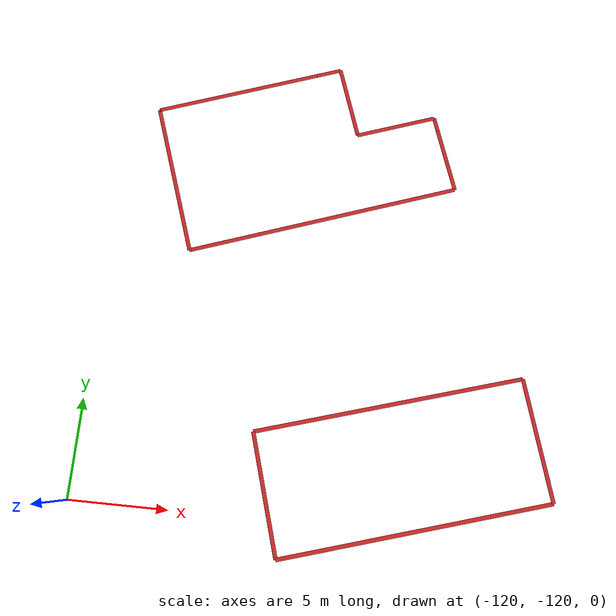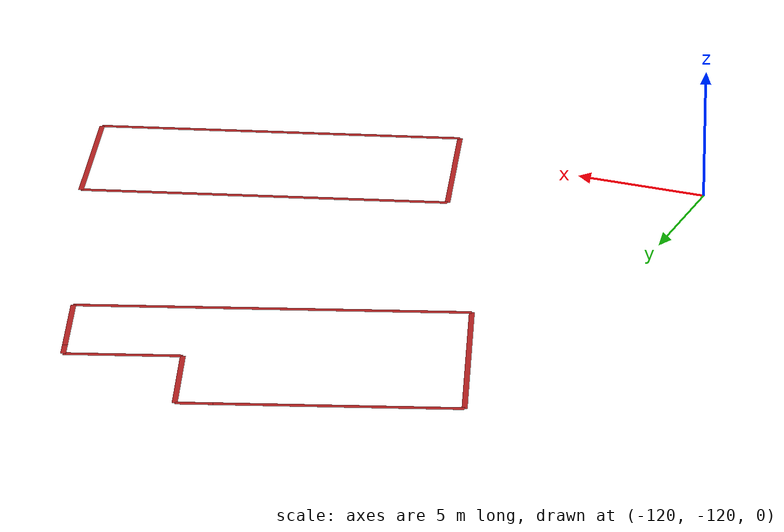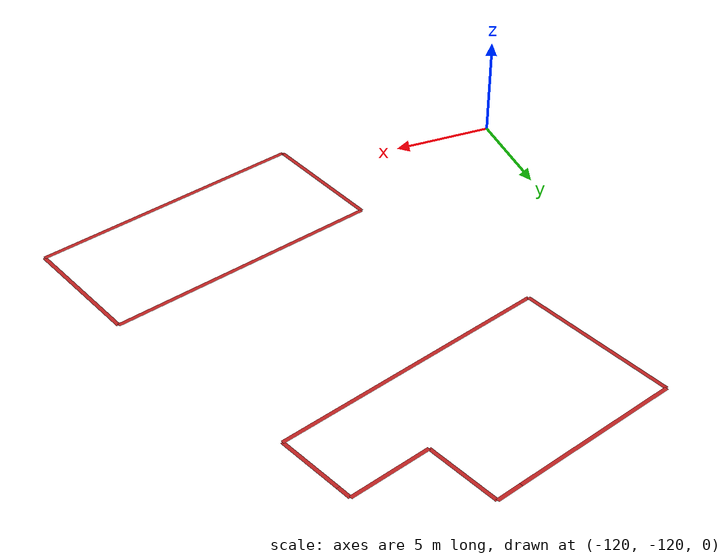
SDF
<sdf version="1.4">
 <world name="default">
  <include><uri>model://sun</uri></include>
  <model name="office_building_179136935">
   <static>true</static>
   <pose>-102.624997378 -115.787035572 0.0 0 0 0</pose>
   <link name="office_building_179136935_0">
    <collision name="office_building_179136935_0">
     <geometry><box><size>6.24606287223 0.2 0</size></box></geometry>
    </collision>
    <visual name="office_building_179136935_0">
     <geometry><box><size>6.24606287223 0.2 0</size></box></geometry>
     <material>
      <script><uri>file://media/materials/scripts/gazebo.material</uri><name>Gazebo/Red</name></script>
     </material>
    </visual>
    <pose>5.48633574197 0.999767813822 0 0 0 1.86337197017</pose>
   </link>
   <link name="office_building_179136935_1">
    <collision name="office_building_179136935_1">
     <geometry><box><size>13.8538544712 0.2 0</size></box></geometry>
    </collision>
    <visual name="office_building_179136935_1">
     <geometry><box><size>13.8538544712 0.2 0</size></box></geometry>
     <material>
      <script><uri>file://media/materials/scripts/gazebo.material</uri><name>Gazebo/Red</name></script>
     </material>
    </visual>
    <pose>-0.245654381756 -3.98783990317 0 0 0 0.292490015879</pose>
   </link>
   <link name="office_building_179136935_2">
    <collision name="office_building_179136935_2">
     <geometry><box><size>6.24607700288 0.2 0</size></box></geometry>
    </collision>
    <visual name="office_building_179136935_2">
     <geometry><box><size>6.24607700288 0.2 0</size></box></geometry>
     <material>
      <script><uri>file://media/materials/scripts/gazebo.material</uri><name>Gazebo/Red</name></script>
     </material>
    </visual>
    <pose>-7.77913223586 -2.9948095587 0 0 0 -1.27822062182</pose>
   </link>
   <link name="office_building_179136935_3">
    <collision name="office_building_179136935_3">
     <geometry><box><size>13.8538548572 0.2 0</size></box></geometry>
    </collision>
    <visual name="office_building_179136935_3">
     <geometry><box><size>13.8538548572 0.2 0</size></box></geometry>
     <material>
      <script><uri>file://media/materials/scripts/gazebo.material</uri><name>Gazebo/Red</name></script>
     </material>
    </visual>
    <pose>-2.04714211213 1.99279815829 0 0 0 -2.84910365769</pose>
   </link>
  </model>
  <model name="office_building_179136939">
   <static>true</static>
   <pose>-108.858917485 -99.1712917288 0.0 0 0 0</pose>
   <link name="office_building_179136939_0">
    <collision name="office_building_179136939_0">
     <geometry><box><size>1.34333223217 0.2 0</size></box></geometry>
    </collision>
    <visual name="office_building_179136939_0">
     <geometry><box><size>1.34333223217 0.2 0</size></box></geometry>
     <material>
      <script><uri>file://media/materials/scripts/gazebo.material</uri><name>Gazebo/Red</name></script>
     </material>
    </visual>
    <pose>-0.622750163074 3.17199838344 0 0 0 -2.80423992272</pose>
   </link>
   <link name="office_building_179136939_1">
    <collision name="office_building_179136939_1">
     <geometry><box><size>3.92541992373 0.2 0</size></box></geometry>
    </collision>
    <visual name="office_building_179136939_1">
     <geometry><box><size>3.92541992373 0.2 0</size></box></geometry>
     <material>
      <script><uri>file://media/materials/scripts/gazebo.material</uri><name>Gazebo/Red</name></script>
     </material>
    </visual>
    <pose>0.656021187688 1.54060038371 0 0 0 1.90562677759</pose>
   </link>
   <link name="office_building_179136939_2">
    <collision name="office_building_179136939_2">
     <geometry><box><size>4.27409033251 0.2 0</size></box></geometry>
    </collision>
    <visual name="office_building_179136939_2">
     <geometry><box><size>4.27409033251 0.2 0</size></box></geometry>
     <material>
      <script><uri>file://media/materials/scripts/gazebo.material</uri><name>Gazebo/Red</name></script>
     </material>
    </visual>
    <pose>3.31916043156 0.389690220573 0 0 0 -2.80648950572</pose>
   </link>
   <link name="office_building_179136939_3">
    <collision name="office_building_179136939_3">
     <geometry><box><size>0.750901481549 0.2 0</size></box></geometry>
    </collision>
    <visual name="office_building_179136939_3">
     <geometry><box><size>0.750901481549 0.2 0</size></box></geometry>
     <material>
      <script><uri>file://media/materials/scripts/gazebo.material</uri><name>Gazebo/Red</name></script>
     </material>
    </visual>
    <pose>5.45965635565 0.737526973559 0 0 0 1.90265147253</pose>
   </link>
   <link name="office_building_179136939_4">
    <collision name="office_building_179136939_4">
     <geometry><box><size>3.458012009 0.2 0</size></box></geometry>
    </collision>
    <visual name="office_building_179136939_4">
     <geometry><box><size>3.458012009 0.2 0</size></box></geometry>
     <material>
      <script><uri>file://media/materials/scripts/gazebo.material</uri><name>Gazebo/Red</name></script>
     </material>
    </visual>
    <pose>6.15466162037 -1.24884773044 0 0 0 1.90839441825</pose>
   </link>
   <link name="office_building_179136939_5">
    <collision name="office_building_179136939_5">
     <geometry><box><size>14.414423229 0.2 0</size></box></geometry>
    </collision>
    <visual name="office_building_179136939_5">
     <geometry><box><size>14.414423229 0.2 0</size></box></geometry>
     <material>
      <script><uri>file://media/materials/scripts/gazebo.material</uri><name>Gazebo/Red</name></script>
     </material>
    </visual>
    <pose>-0.0777374377925 -5.25401699189 0 0 0 0.33562469498</pose>
   </link>
   <link name="office_building_179136939_6">
    <collision name="office_building_179136939_6">
     <geometry><box><size>8.13433588384 0.2 0</size></box></geometry>
    </collision>
    <visual name="office_building_179136939_6">
     <geometry><box><size>8.13433588384 0.2 0</size></box></geometry>
     <material>
      <script><uri>file://media/materials/scripts/gazebo.material</uri><name>Gazebo/Red</name></script>
     </material>
    </visual>
    <pose>-8.22279325124 -3.78768261385 0 0 0 -1.23506389121</pose>
   </link>
   <link name="office_building_179136939_7">
    <collision name="office_building_179136939_7">
     <geometry><box><size>8.79700392106 0.2 0</size></box></geometry>
    </collision>
    <visual name="office_building_179136939_7">
     <geometry><box><size>8.79700392106 0.2 0</size></box></geometry>
     <material>
      <script><uri>file://media/materials/scripts/gazebo.material</uri><name>Gazebo/Red</name></script>
     </material>
    </visual>
    <pose>-5.40966146792 1.50104789435 0 0 0 -2.8059802258</pose>
   </link>
  </model>
 </world>
</sdf>
